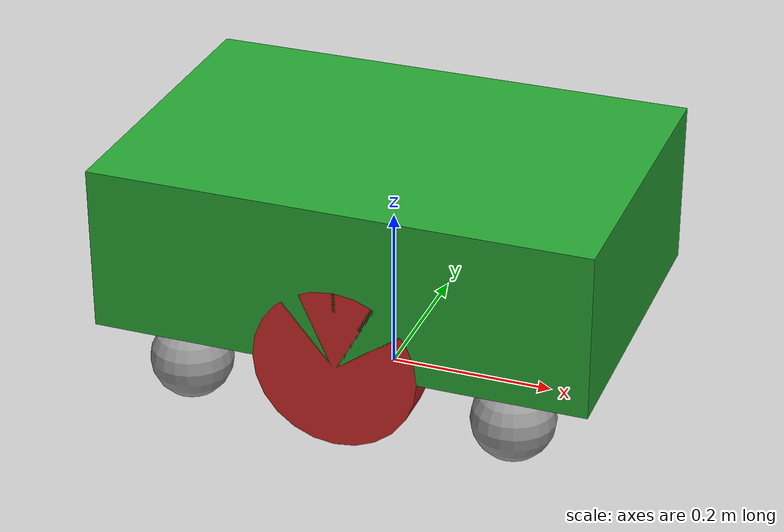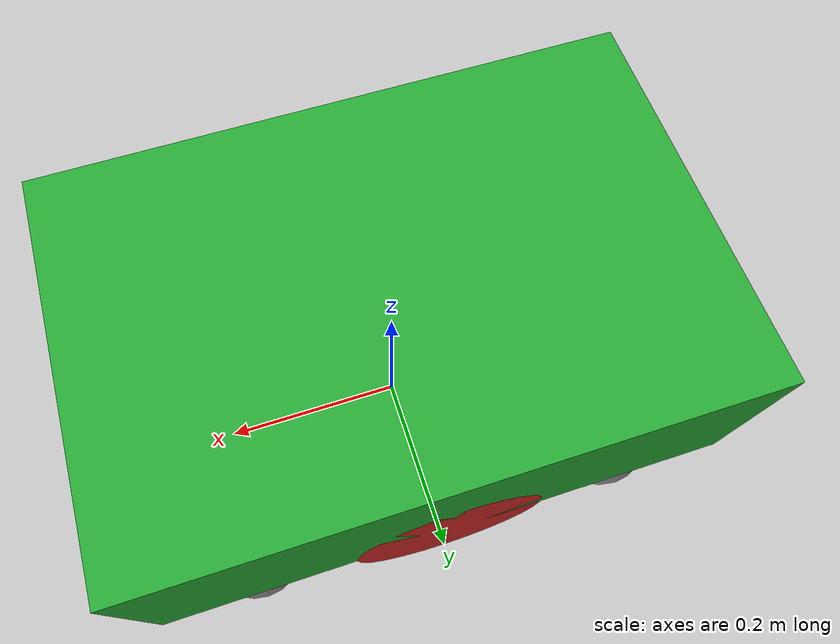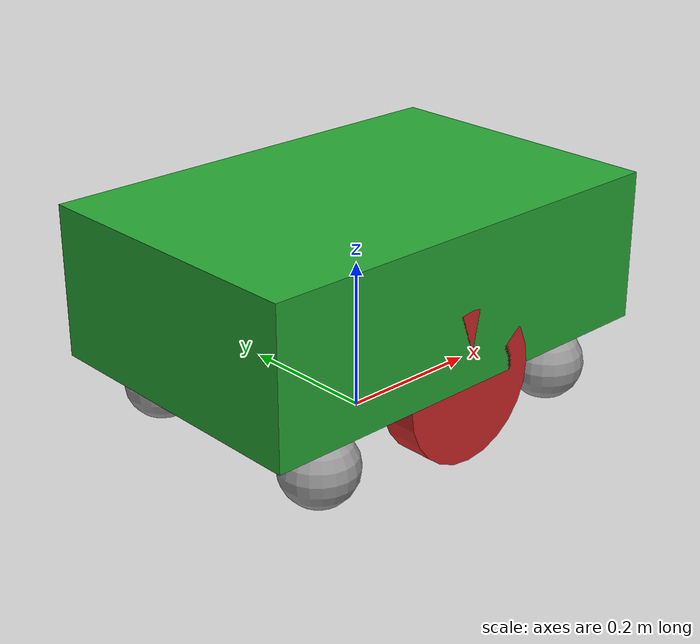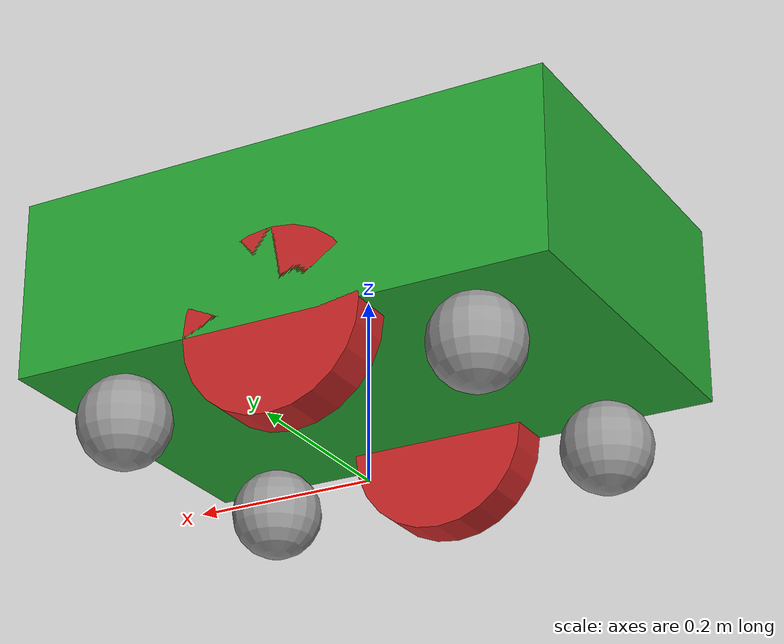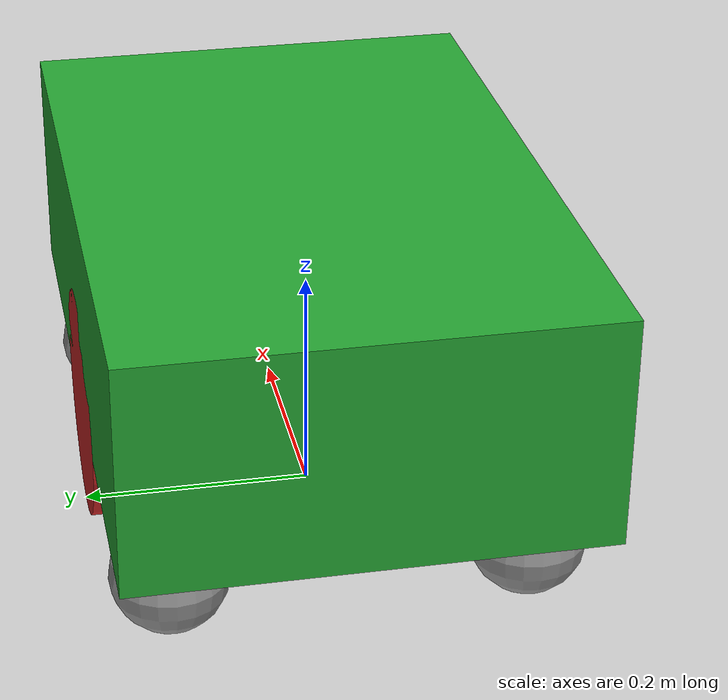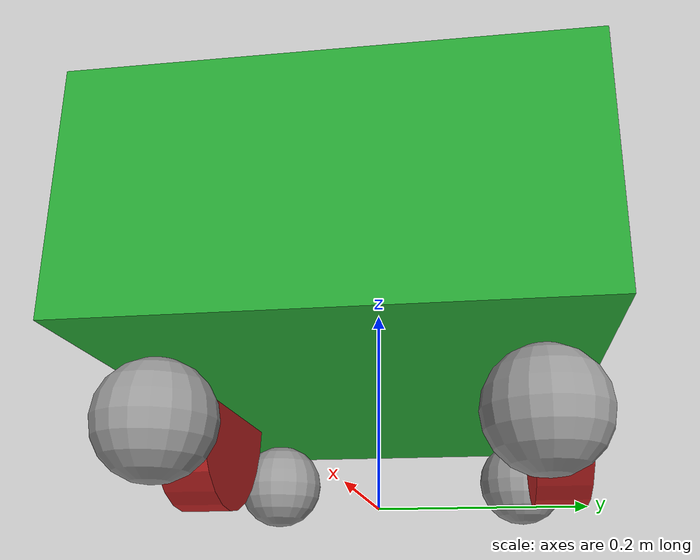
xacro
<?xml version="1.0" encoding="UTF-8" ?>
<robot xmlns:xacro="http://www.ros.org/wiki/xacro">

    <xacro:property name="base_length" value="0.6"/>
    <xacro:property name="base_width" value="0.4"/>
    <xacro:property name="base_height" value="0.2"/>

    <xacro:property name="wheel_radius" value="${base_height / 2.0}"/>
    <xacro:property name="wheel_length" value="${wheel_radius / 2.0}"/>
    <xacro:property name="wheel_separation" value="0.35" />

    <xacro:property name="caster_wheel_radius" value="${wheel_radius / 2.0}" />

    <xacro:macro name="wheel_link" params="prefix">
        <link name="${prefix}_wheel_link">
            <visual>
                <geometry>
                    <cylinder radius="${wheel_radius}" length="${wheel_length}"/>
                </geometry>
                <origin xyz="0 0 0" rpy="${pi / 2.0} 0 0" />
                <material name="red" />
            </visual>
            <collision>
                <geometry>
                    <sphere radius="${wheel_radius}" />
                </geometry>
                <origin xyz="0 0 0" rpy="${pi / 2.0} 0 0" />
            </collision>
            <xacro:cylinder_inertial mass="0.5" radius="${wheel_radius}" length="${wheel_length}" origin_xyz="0 0 0" origin_rpy="${pi / 2.0} 0 0"/>
        </link>
    </xacro:macro>

    <xacro:macro name="caster_wheel" params="prefix">
        <link name="${prefix}_caster_wheel">
            <visual>
                <geometry>
                    <sphere radius="${caster_wheel_radius}" />
                </geometry>
                <material name="gray" />
                <origin xyz="0 0 0" rpy="0 0 0" />
            </visual>
            <collision>
                <geometry>
                    <sphere radius="${caster_wheel_radius}" />
                </geometry>
                <origin xyz="0 0 0" rpy="0 0 0" />
            </collision>
            <xacro:sphere_inertial mass="0.25" radius="${caster_wheel_radius}" origin_xyz="0 0 0" origin_rpy="0 0 0"/>
        </link>
    </xacro:macro>

    <link name="base_footprint"/>

    <joint name="base_footprint_joint" type="fixed">
        <parent link="base_footprint"/>
        <child link="base_link"/>
        <origin xyz="0 0 ${base_height / 2.0 + wheel_radius}" rpy="0 0 0"/>
    </joint>

    <link name="base_link">
        <visual>
            <geometry>
                <box size="${base_length} ${base_width} ${base_height}"/>
            </geometry>
            <material name="green"/>
            <origin xyz="0 0 0" rpy="0 0 0"/>
        </visual>
        <collision>
            <geometry>
                <box size="${base_length} ${base_width} ${base_height}"/>
            </geometry>
            <origin xyz="0 0 0" rpy="0 0 0"/>
        </collision>
        <xacro:box_inertial mass="5.0" size="${base_length} ${base_width} ${base_height}" origin_xyz="0 0 0" origin_rpy="0 0 0"/>
    </link>

    <joint name="base_left_wheel_joint" type="continuous">
        <parent link="base_link"/>
        <child link="left_wheel_link"/>
        <origin xyz="0 ${+ (base_width - wheel_length) / 2.0} ${- base_height / 2.0}" rpy="0 0 0"/>
        <axis xyz="0 1 0" />
    </joint>

    <xacro:wheel_link prefix="left" />

    <joint name="base_right_wheel_joint" type="continuous">
        <parent link="base_link"/>
        <child link="right_wheel_link"/>
        <origin xyz="0 ${- (base_width - wheel_length) / 2.0} ${- base_height / 2.0}" rpy="0 0 0"/>
        <axis xyz="0 1 0" />
    </joint>

    <xacro:wheel_link prefix="right" />

    <joint name="base_rear_left_caster_wheel_joint" type="fixed">
        <parent link="base_link"/>
        <child link="rear_left_caster_wheel" />
        <origin xyz="${- base_length / 3.0} ${+ (base_width / 2.0 - caster_wheel_radius)} ${- (base_height / 2.0 + caster_wheel_radius)}" rpy="0 0 0" />
    </joint>

    <xacro:caster_wheel prefix="rear_left"/>

    <joint name="base_rear_right_caster_wheel_joint" type="fixed">
        <parent link="base_link"/>
        <child link="rear_right_caster_wheel" />
        <origin xyz="${- base_length / 3.0} ${- (base_width / 2.0 - caster_wheel_radius)} ${- (base_height / 2.0 + caster_wheel_radius)}" rpy="0 0 0" />
    </joint>

    <xacro:caster_wheel prefix="rear_right"/>

    <joint name="base_front_left_caster_wheel_joint" type="fixed">
        <parent link="base_link"/>
        <child link="front_left_caster_wheel" />
        <origin xyz="${+ base_length / 3.0} ${+ (base_width / 2.0 - caster_wheel_radius)} ${- (base_height / 2.0 + caster_wheel_radius)}" rpy="0 0 0" />
    </joint>

    <xacro:caster_wheel prefix="front_left"/>

    <joint name="base_front_right_caster_wheel_joint" type="fixed">
        <parent link="base_link"/>
        <child link="front_right_caster_wheel" />
        <origin xyz="${+ base_length / 3.0} ${- (base_width / 2.0 - caster_wheel_radius)} ${- (base_height / 2.0 + caster_wheel_radius)}" rpy="0 0 0" />
    </joint>

    <xacro:caster_wheel prefix="front_right"/>

</robot>
